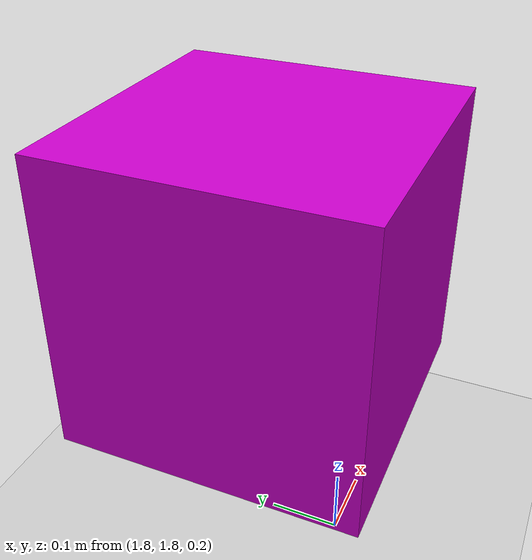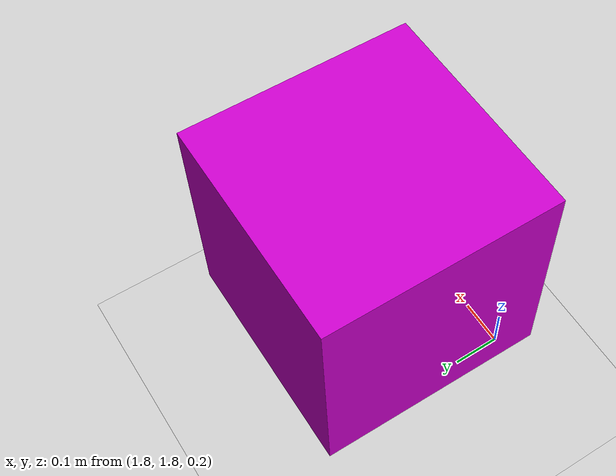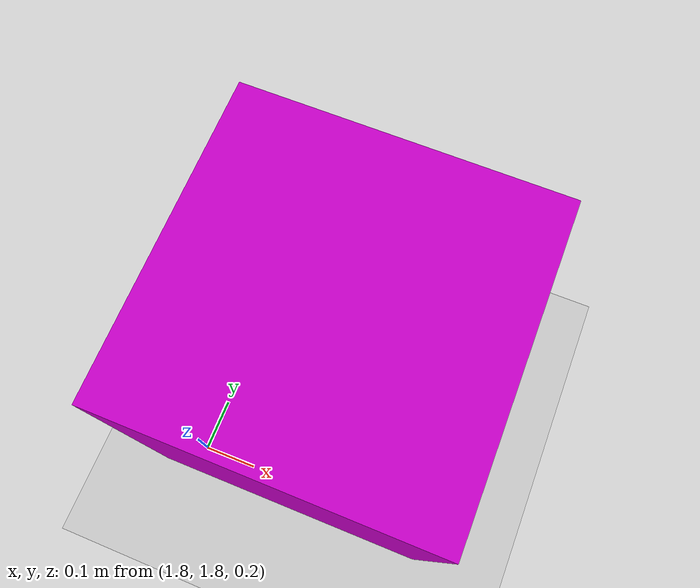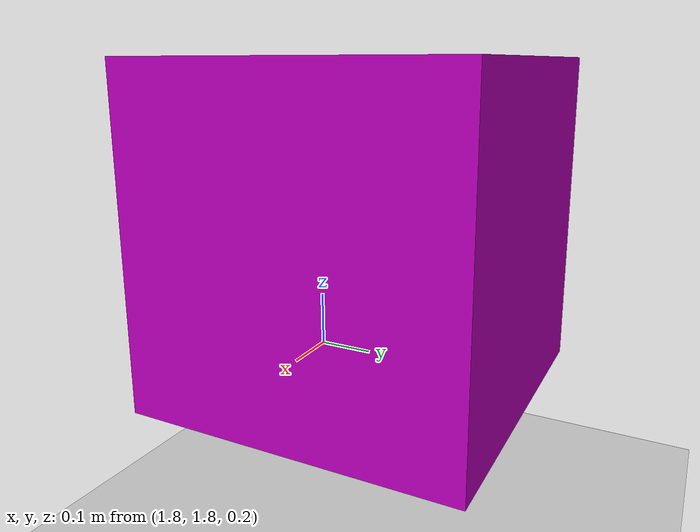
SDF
<?xml version="1.0" ?>
<sdf version="1.6">
  <world name="world_advanced">

    <include>
      <uri>model://sun</uri>
    </include>
    <include>
      <uri>model://ground_plane</uri>
    </include>

    <!-- Plugin cuaca / perubahan environment -->
    <plugin name="my_world_plugin" filename="libmy_world_plugin.so"/>

    <physics type="ode">
      <real_time_update_rate>1000.0</real_time_update_rate>
      <max_step_size>0.001</max_step_size>
      <gravity>0 0 -9.81</gravity>
    </physics>

    <!-- Beberapa model untuk demonstrasi plugin -->
    <model name="box_plugin_demo">
      <pose>2 2 0.5 0 0 0</pose>
      <static>false</static>
      <link name="link">
        <inertial>
          <mass>1.0</mass>
          <inertia>
            <ixx>0.0833</ixx><ixy>0</ixy><ixz>0</ixz>
            <iyy>0.0833</iyy><iyz>0</iyz>
            <izz>0.0833</izz>
          </inertia>
        </inertial>
        <collision name="collision">
          <geometry><box><size>0.5 0.5 0.5</size></box></geometry>
        </collision>
        <visual name="visual">
          <geometry><box><size>0.5 0.5 0.5</size></box></geometry>
          <material>
            <ambient>0.8 0 0.8 1</ambient>
            <diffuse>0.8 0 0.8 1</diffuse>
          </material>
        </visual>
      </link>
    </model>

    <gui fullscreen="0">
      <camera name="user_camera">
        <pose>8 -8 5 0 0.4 2.4</pose>
        <view_controller>orbit</view_controller>
      </camera>
    </gui>

  </world>
</sdf>
